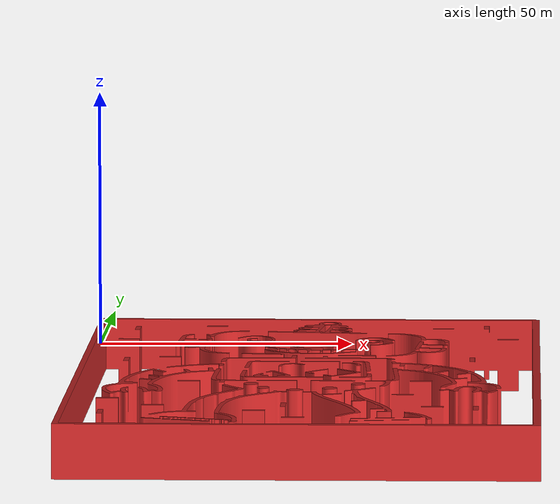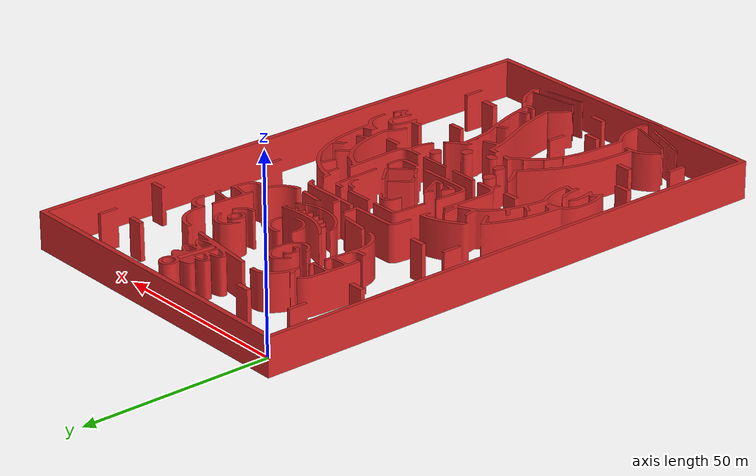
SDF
<?xml version="1.0" ?>
<sdf version="1.5">
  <model name="rcap_robot">
    <static>true</static>
    <pose>0 0 0 0 0 0</pose>
    <link name="link">
      <collision name="collision">
        <geometry>
          <mesh>
            <uri>model://rcap_robot/rcap_robot.stl</uri>
            <scale>400 500 5</scale>
          </mesh>
        </geometry>
      </collision>
      <visual name="visual">
        <geometry>
          <mesh>
            <uri>model://rcap_robot/rcap_robot.stl</uri>
            <scale>400 500 5</scale>
          </mesh>
        </geometry>
        <cast_shadows>false</cast_shadows>
        <material>
          <script>
            <uri>file://media/materials/scripts/gazebo.material</uri>
            <name>Gazebo/Red</name>
          </script>
        </material>
      </visual>
    </link>
  </model>
</sdf>
